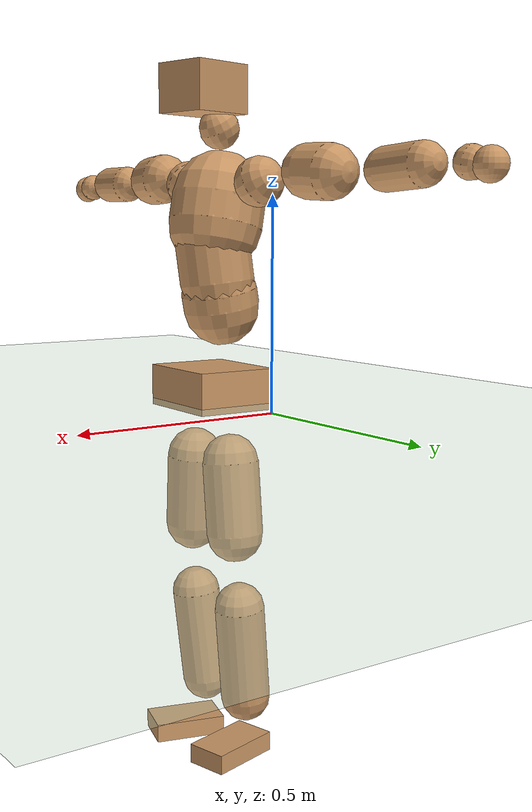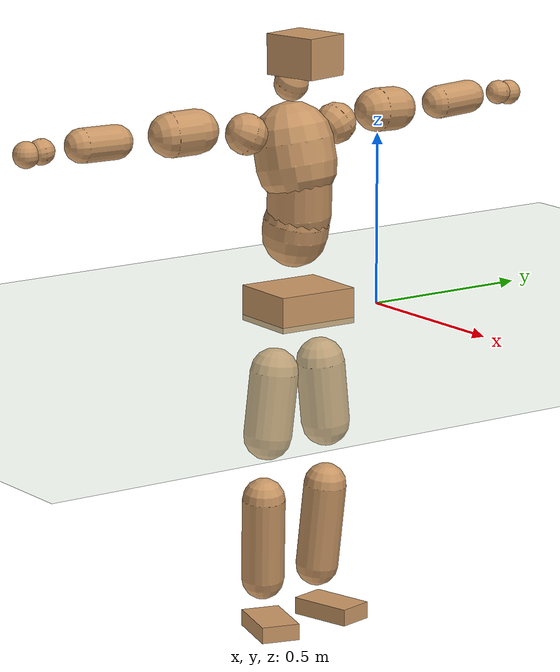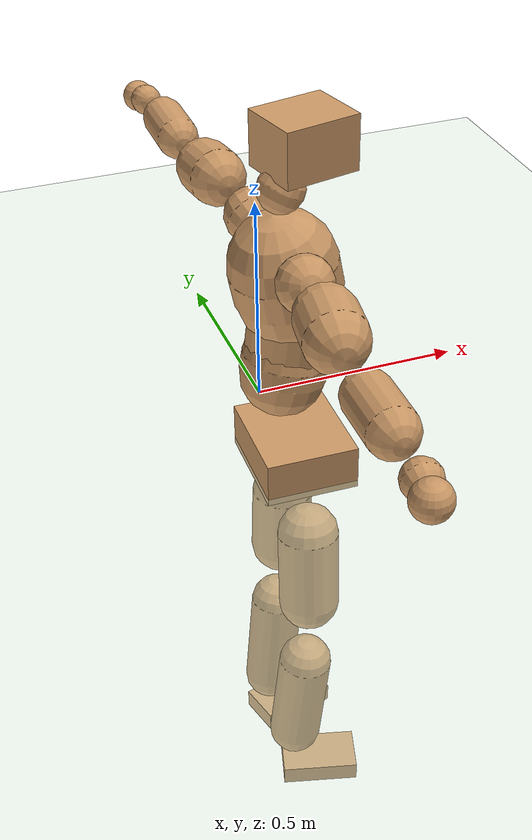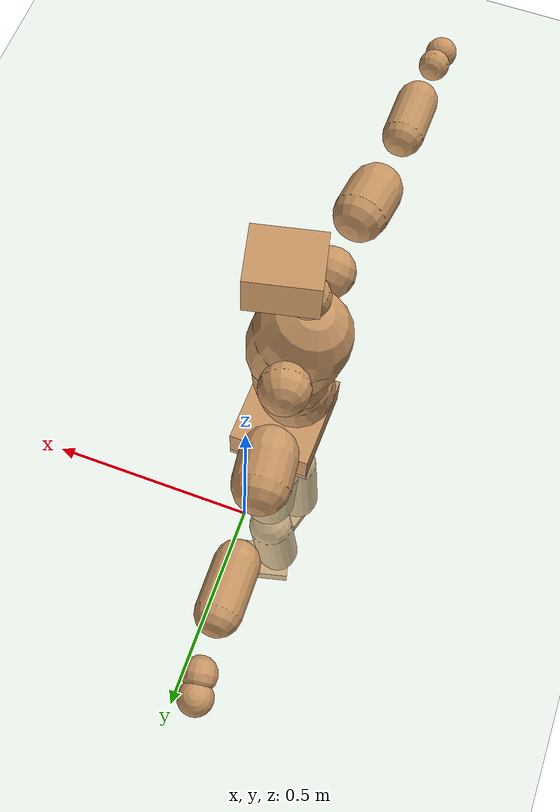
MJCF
<mujoco model="humanoid">
  <compiler coordinate="local" angle="radian"/>
  <default>
    <joint damping="0.0" armature="0.01" stiffness="0.0" limited="true"/>
    <geom conaffinity="1" condim="3" contype="7" margin="0.001" rgba="0.8 0.6 .4 1"/>
  </default>
  <asset>
    <texture type="skybox" builtin="gradient" rgb1=".4 .5 .6" rgb2="0 0 0" width="100" height="100"/>
    <texture builtin="flat" height="1278" mark="cross" markrgb="1 1 1" name="texgeom" random="0.01" rgb1="0.8 0.6 0.4" rgb2="0.8 0.6 0.4" type="cube" width="127"/>
    <texture builtin="checker" height="100" name="texplane" rgb1="0 0 0" rgb2="0.8 0.8 0.8" type="2d" width="100"/>
    <material name="MatPlane" reflectance="0.5" shininess="1" specular="1" texrepeat="60 60" texture="texplane"/>
    <material name="geom" texture="texgeom" texuniform="true"/>
  </asset>
  <worldbody>
    <light cutoff="100" diffuse="1 1 1" dir="-0 0 -1.3" directional="true" exponent="1" pos="0 0 1.3" specular=".1 .1 .1"/>
    <geom conaffinity="1" condim="3" name="floor" pos="0 0 0" rgba="0.8 0.9 0.8 1" size="100 100 .2" type="plane" material="MatPlane"/>
    <body name="Pelvis" pos="0.0013 -0.2705 0.0409">
      <freejoint name="Pelvis"/>
      <geom type="box" contype="1" conaffinity="1" density="5359.374883" pos="-0.0120 0.0003 -0.0082" size="0.1034 0.1216 0.0512" quat="0.9999 0.0000 0.0000 -0.0129" name="Pelvis"/>
      <body name="L_Hip" pos="-0.0141 0.0698 -0.0891">
        <joint name="L_Hip_x" type="hinge" pos="0 0 0" axis="1 0 0" stiffness="1600" damping="160" armature="0.02" range="-180.0000 180.0000"/>
        <joint name="L_Hip_y" type="hinge" pos="0 0 0" axis="0 1 0" stiffness="1600" damping="160" armature="0.02" range="-180.0000 180.0000"/>
        <joint name="L_Hip_z" type="hinge" pos="0 0 0" axis="0 0 1" stiffness="1600" damping="160" armature="0.02" range="-180.0000 180.0000"/>
        <geom type="capsule" contype="1" conaffinity="1" density="2040.816327" size="0.0701" fromto="-0.0001 0.0102 -0.0996 -0.0003 0.0288 -0.2809" name="L_Hip"/>
        <body name="L_Knee" pos="-0.0004 0.039 -0.3805">
          <joint name="L_Knee_x" type="hinge" pos="0 0 0" axis="1 0 0" stiffness="1600" damping="160" armature="0.02" range="-180.0000 180.0000"/>
          <joint name="L_Knee_y" type="hinge" pos="0 0 0" axis="0 1 0" stiffness="1600" damping="160" armature="0.02" range="-180.0000 180.0000"/>
          <joint name="L_Knee_z" type="hinge" pos="0 0 0" axis="0 0 1" stiffness="1600" damping="160" armature="0.02" range="-180.0000 180.0000"/>
          <geom type="capsule" contype="1" conaffinity="1" density="1234.567901" size="0.0626" fromto="-0.0096 -0.0038 -0.0921 -0.0352 -0.0140 -0.3388" name="L_Knee"/>
          <body name="L_Ankle" pos="-0.0448 -0.0178 -0.4309">
            <joint name="L_Ankle_x" type="hinge" pos="0 0 0" axis="1 0 0" stiffness="1600" damping="160" armature="0.02" range="-180.0000 180.0000"/>
            <joint name="L_Ankle_y" type="hinge" pos="0 0 0" axis="0 1 0" stiffness="1600" damping="160" armature="0.02" range="-180.0000 180.0000"/>
            <joint name="L_Ankle_z" type="hinge" pos="0 0 0" axis="0 0 1" stiffness="1600" damping="160" armature="0.02" range="-180.0000 180.0000"/>
            <geom type="box" contype="1" conaffinity="1" density="999.999995" pos="0.0641 0.0161 -0.0302" size="0.0935 0.0526 0.0245" quat="0.9924 0.0000 0.0000 0.1228" name="L_Ankle"/>
            <body name="L_Toe" pos="0.1283 0.0322 -0.0605">
              <joint name="L_Toe_x" type="hinge" pos="0 0 0" axis="1 0 0" stiffness="1000" damping="100" armature="0.02" range="-180.0000 180.0000"/>
              <joint name="L_Toe_y" type="hinge" pos="0 0 0" axis="0 1 0" stiffness="1000" damping="100" armature="0.02" range="-180.0000 180.0000"/>
              <joint name="L_Toe_z" type="hinge" pos="0 0 0" axis="0 0 1" stiffness="1000" damping="100" armature="0.02" range="-180.0000 180.0000"/>
              <geom type="box" contype="1" conaffinity="1" density="8590360.06047" pos="0.0000 0.0000 0.0306" size="0.001 0.0026 0.0012" quat="0.9918 0.0000 0.0000 0.1281" name="L_Toe"/>
            </body>
          </body>
        </body>
      </body>
      <body name="R_Hip" pos="-0.0098 -0.0724 -0.097">
        <joint name="R_Hip_x" type="hinge" pos="0 0 0" axis="1 0 0" stiffness="1600" damping="160" armature="0.02" range="-180.0000 180.0000"/>
        <joint name="R_Hip_y" type="hinge" pos="0 0 0" axis="0 1 0" stiffness="1600" damping="160" armature="0.02" range="-180.0000 180.0000"/>
        <joint name="R_Hip_z" type="hinge" pos="0 0 0" axis="0 0 1" stiffness="1600" damping="160" armature="0.02" range="-180.0000 180.0000"/>
        <geom type="capsule" contype="1" conaffinity="1" density="2040.816327" size="0.07" fromto="-0.0028 -0.0105 -0.0994 -0.0079 -0.0302 -0.2853" name="R_Hip"/>
        <body name="R_Knee" pos="-0.0107 -0.0407 -0.3847">
          <joint name="R_Knee_x" type="hinge" pos="0 0 0" axis="1 0 0" stiffness="1600" damping="160" armature="0.02" range="-180.0000 180.0000"/>
          <joint name="R_Knee_y" type="hinge" pos="0 0 0" axis="0 1 0" stiffness="1600" damping="160" armature="0.02" range="-180.0000 180.0000"/>
          <joint name="R_Knee_z" type="hinge" pos="0 0 0" axis="0 0 1" stiffness="1600" damping="160" armature="0.02" range="-180.0000 180.0000"/>
          <geom type="capsule" contype="1" conaffinity="1" density="1234.567901" size="0.0622" fromto="-0.0086 0.0046 -0.0916 -0.0316 0.0167 -0.3352" name="R_Knee"/>
          <body name="R_Ankle" pos="-0.0403 0.0213 -0.4269">
            <joint name="R_Ankle_x" type="hinge" pos="0 0 0" axis="1 0 0" stiffness="1600" damping="160" armature="0.02" range="-180.0000 180.0000"/>
            <joint name="R_Ankle_y" type="hinge" pos="0 0 0" axis="0 1 0" stiffness="1600" damping="160" armature="0.02" range="-180.0000 180.0000"/>
            <joint name="R_Ankle_z" type="hinge" pos="0 0 0" axis="0 0 1" stiffness="1600" damping="160" armature="0.02" range="-180.0000 180.0000"/>
            <geom type="box" contype="1" conaffinity="1" density="999.999973" pos="0.0672 -0.0192 -0.0321" size="0.0919 0.056 0.0238" quat="0.9903 0.0000 0.0000 -0.1387" name="R_Ankle"/>
            <body name="R_Toe" pos="0.1345 -0.0384 -0.0641">
              <joint name="R_Toe_x" type="hinge" pos="0 0 0" axis="1 0 0" stiffness="1000" damping="100" armature="0.02" range="-180.0000 180.0000"/>
              <joint name="R_Toe_y" type="hinge" pos="0 0 0" axis="0 1 0" stiffness="1000" damping="100" armature="0.02" range="-180.0000 180.0000"/>
              <joint name="R_Toe_z" type="hinge" pos="0 0 0" axis="0 0 1" stiffness="1000" damping="100" armature="0.02" range="-180.0000 180.0000"/>
              <geom type="box" contype="1" conaffinity="1" density="7806100.931723" pos="0.0000 0.0000 0.0328" size="0.0012 0.0027 0.0012" quat="0.9915 0.0000 0.0000 -0.1301" name="R_Toe"/>
            </body>
          </body>
        </body>
      </body>
      <body name="Torso" pos="-0.048 0.0044 0.137">
        <joint name="Torso_x" type="hinge" pos="0 0 0" axis="1 0 0" stiffness="2000" damping="200" armature="0.02" range="-180.0000 180.0000"/>
        <joint name="Torso_y" type="hinge" pos="0 0 0" axis="0 1 0" stiffness="2000" damping="200" armature="0.02" range="-180.0000 180.0000"/>
        <joint name="Torso_z" type="hinge" pos="0 0 0" axis="0 0 1" stiffness="2000" damping="200" armature="0.02" range="-180.0000 180.0000"/>
        <geom type="capsule" contype="1" conaffinity="1" density="2040.816327" size="0.0946" fromto="0.0182 0.0028 0.0928 0.0105 0.0016 0.0536" name="Torso"/>
        <body name="Spine" pos="0.0287 0.0043 0.1465">
          <joint name="Spine_x" type="hinge" pos="0 0 0" axis="1 0 0" stiffness="2000" damping="200" armature="0.02" range="-180.0000 180.0000"/>
          <joint name="Spine_y" type="hinge" pos="0 0 0" axis="0 1 0" stiffness="2000" damping="200" armature="0.02" range="-180.0000 180.0000"/>
          <joint name="Spine_z" type="hinge" pos="0 0 0" axis="0 0 1" stiffness="2000" damping="200" armature="0.02" range="-180.0000 180.0000"/>
          <geom type="capsule" contype="1" conaffinity="1" density="2040.816327" size="0.0928" fromto="0.0098 -0.0058 0.0921 -0.0034 0.0020 -0.0317" name="Spine"/>
          <body name="Chest" pos="0.0064 -0.0038 0.0604">
            <joint name="Chest_x" type="hinge" pos="0 0 0" axis="1 0 0" stiffness="2000" damping="200" armature="0.02" range="-180.0000 180.0000"/>
            <joint name="Chest_y" type="hinge" pos="0 0 0" axis="0 1 0" stiffness="2000" damping="200" armature="0.02" range="-180.0000 180.0000"/>
            <joint name="Chest_z" type="hinge" pos="0 0 0" axis="0 0 1" stiffness="2000" damping="200" armature="0.02" range="-180.0000 180.0000"/>
            <geom type="capsule" contype="1" conaffinity="1" density="2040.816327" size="0.1162" fromto="-0.0235 -0.0063 0.1136 -0.0102 -0.0027 0.0491" name="Chest"/>
            <body name="Neck" pos="-0.0526 -0.0143 0.2369">
              <joint name="Neck_x" type="hinge" pos="0 0 0" axis="1 0 0" stiffness="1000" damping="100" armature="0.02" range="-180.0000 180.0000"/>
              <joint name="Neck_y" type="hinge" pos="0 0 0" axis="0 1 0" stiffness="1000" damping="100" armature="0.02" range="-180.0000 180.0000"/>
              <joint name="Neck_z" type="hinge" pos="0 0 0" axis="0 0 1" stiffness="1000" damping="100" armature="0.02" range="-180.0000 180.0000"/>
              <geom type="capsule" contype="1" conaffinity="1" density="1000" size="0.0497" fromto="0.0250 0.0049 0.0430 0.0260 0.0050 0.0447" name="Neck"/>
              <body name="Head" pos="0.051 0.0099 0.0877">
                <joint name="Head_x" type="hinge" pos="0 0 0" axis="1 0 0" stiffness="1000" damping="100" armature="0.02" range="-180.0000 180.0000"/>
                <joint name="Head_y" type="hinge" pos="0 0 0" axis="0 1 0" stiffness="1000" damping="100" armature="0.02" range="-180.0000 180.0000"/>
                <joint name="Head_z" type="hinge" pos="0 0 0" axis="0 0 1" stiffness="1000" damping="100" armature="0.02" range="-180.0000 180.0000"/>
                <geom type="box" contype="1" conaffinity="1" density="2249.999993" pos="0.0265 0.0059 0.0448" size="0.0826 0.0687 0.0583" quat="0.9939 0.0000 0.0000 0.1102" name="Head"/>
              </body>
            </body>
            <body name="L_Thorax" pos="-0.0214 0.0811 0.1261">
              <joint name="L_Thorax_x" type="hinge" pos="0 0 0" axis="1 0 0" stiffness="1000" damping="100" armature="0.02" range="-180.0000 180.0000"/>
              <joint name="L_Thorax_y" type="hinge" pos="0 0 0" axis="0 1 0" stiffness="1000" damping="100" armature="0.02" range="-180.0000 180.0000"/>
              <joint name="L_Thorax_z" type="hinge" pos="0 0 0" axis="0 0 1" stiffness="1000" damping="100" armature="0.02" range="-180.0000 180.0000"/>
              <geom type="capsule" contype="1" conaffinity="1" density="1000" size="0.0599" fromto="-0.0127 0.0677 0.0226 -0.0131 0.0695 0.0233" name="L_Thorax"/>
              <body name="L_Shoulder" pos="-0.0258 0.1372 0.0459">
                <joint name="L_Shoulder_x" type="hinge" pos="0 0 0" axis="1 0 0" stiffness="1000" damping="100" armature="0.02" range="-720.0000 720.0000"/>
                <joint name="L_Shoulder_y" type="hinge" pos="0 0 0" axis="0 1 0" stiffness="1000" damping="100" armature="0.02" range="-720.0000 720.0000"/>
                <joint name="L_Shoulder_z" type="hinge" pos="0 0 0" axis="0 0 1" stiffness="1000" damping="100" armature="0.02" range="-720.0000 720.0000"/>
                <geom type="capsule" contype="1" conaffinity="1" density="1000" size="0.0634" fromto="-0.0094 0.0928 -0.0050 -0.0163 0.1607 -0.0087" name="L_Shoulder"/>
                <body name="L_Elbow" pos="-0.0258 0.2535 -0.0138">
                  <joint name="L_Elbow_x" type="hinge" pos="0 0 0" axis="1 0 0" stiffness="1000" damping="100" armature="0.02" range="-720.0000 720.0000"/>
                  <joint name="L_Elbow_y" type="hinge" pos="0 0 0" axis="0 1 0" stiffness="1000" damping="100" armature="0.02" range="-720.0000 720.0000"/>
                  <joint name="L_Elbow_z" type="hinge" pos="0 0 0" axis="0 0 1" stiffness="1000" damping="100" armature="0.02" range="-720.0000 720.0000"/>
                  <geom type="capsule" contype="1" conaffinity="1" density="1000" size="0.0482" fromto="-0.0013 0.0781 0.0040 -0.0031 0.1869 0.0096" name="L_Elbow"/>
                  <body name="L_Wrist" pos="-0.0044 0.265 0.0136">
                    <joint name="L_Wrist_x" type="hinge" pos="0 0 0" axis="1 0 0" stiffness="600" damping="60" armature="0.02" range="-180.0000 180.0000"/>
                    <joint name="L_Wrist_y" type="hinge" pos="0 0 0" axis="0 1 0" stiffness="600" damping="60" armature="0.02" range="-180.0000 180.0000"/>
                    <joint name="L_Wrist_z" type="hinge" pos="0 0 0" axis="0 0 1" stiffness="600" damping="60" armature="0.02" range="-180.0000 180.0000"/>
                    <geom type="capsule" contype="1" conaffinity="1" density="1000" size="0.0354" fromto="-0.0075 0.0428 -0.0053 -0.0078 0.0447 -0.0056" name="L_Wrist"/>
                    <body name="L_Hand" pos="-0.0153 0.0875 -0.0109">
                      <joint name="L_Hand_x" type="hinge" pos="0 0 0" axis="1 0 0" stiffness="600" damping="60" armature="0.02" range="-180.0000 180.0000"/>
                      <joint name="L_Hand_y" type="hinge" pos="0 0 0" axis="0 1 0" stiffness="600" damping="60" armature="0.02" range="-180.0000 180.0000"/>
                      <joint name="L_Hand_z" type="hinge" pos="0 0 0" axis="0 0 1" stiffness="600" damping="60" armature="0.02" range="-180.0000 180.0000"/>
                      <geom type="sphere" contype="1" conaffinity="1" density="1000" size="0.0362" pos="0.0000 0.0000 0.0000" name="L_Hand"/>
                    </body>
                  </body>
                </body>
              </body>
            </body>
            <body name="R_Thorax" pos="-0.0272 -0.094 0.1253">
              <joint name="R_Thorax_x" type="hinge" pos="0 0 0" axis="1 0 0" stiffness="1000" damping="100" armature="0.02" range="-180.0000 180.0000"/>
              <joint name="R_Thorax_y" type="hinge" pos="0 0 0" axis="0 1 0" stiffness="1000" damping="100" armature="0.02" range="-180.0000 180.0000"/>
              <joint name="R_Thorax_z" type="hinge" pos="0 0 0" axis="0 0 1" stiffness="1000" damping="100" armature="0.02" range="-180.0000 180.0000"/>
              <geom type="capsule" contype="1" conaffinity="1" density="1000" size="0.0599" fromto="-0.0066 -0.0630 0.0244 -0.0068 -0.0648 0.0252" name="R_Thorax"/>
              <body name="R_Shoulder" pos="-0.0134 -0.1278 0.0496">
                <joint name="R_Shoulder_x" type="hinge" pos="0 0 0" axis="1 0 0" stiffness="1000" damping="100" armature="0.02" range="-720.0000 720.0000"/>
                <joint name="R_Shoulder_y" type="hinge" pos="0 0 0" axis="0 1 0" stiffness="1000" damping="100" armature="0.02" range="-720.0000 720.0000"/>
                <joint name="R_Shoulder_z" type="hinge" pos="0 0 0" axis="0 0 1" stiffness="1000" damping="100" armature="0.02" range="-720.0000 720.0000"/>
                <geom type="capsule" contype="1" conaffinity="1" density="1000" size="0.0644" fromto="-0.0131 -0.0934 -0.0035 -0.0239 -0.1699 -0.0064" name="R_Shoulder"/>
                <body name="R_Elbow" pos="-0.037 -0.2634 -0.0099">
                  <joint name="R_Elbow_x" type="hinge" pos="0 0 0" axis="1 0 0" stiffness="1000" damping="100" armature="0.02" range="-720.0000 720.0000"/>
                  <joint name="R_Elbow_y" type="hinge" pos="0 0 0" axis="0 1 0" stiffness="1000" damping="100" armature="0.02" range="-720.0000 720.0000"/>
                  <joint name="R_Elbow_z" type="hinge" pos="0 0 0" axis="0 0 1" stiffness="1000" damping="100" armature="0.02" range="-720.0000 720.0000"/>
                  <geom type="capsule" contype="1" conaffinity="1" density="1000" size="0.0492" fromto="-0.0017 -0.0792 0.0007 -0.0040 -0.1878 0.0017" name="R_Elbow"/>
                  <body name="R_Wrist" pos="-0.0057 -0.267 0.0024">
                    <joint name="R_Wrist_x" type="hinge" pos="0 0 0" axis="1 0 0" stiffness="600" damping="60" armature="0.02" range="-180.0000 180.0000"/>
                    <joint name="R_Wrist_y" type="hinge" pos="0 0 0" axis="0 1 0" stiffness="600" damping="60" armature="0.02" range="-180.0000 180.0000"/>
                    <joint name="R_Wrist_z" type="hinge" pos="0 0 0" axis="0 0 1" stiffness="600" damping="60" armature="0.02" range="-180.0000 180.0000"/>
                    <geom type="capsule" contype="1" conaffinity="1" density="1000" size="0.0368" fromto="-0.0047 -0.0448 -0.0044 -0.0049 -0.0468 -0.0046" name="R_Wrist"/>
                    <body name="R_Hand" pos="-0.0097 -0.0916 -0.009">
                      <joint name="R_Hand_x" type="hinge" pos="0 0 0" axis="1 0 0" stiffness="600" damping="60" armature="0.02" range="-180.0000 180.0000"/>
                      <joint name="R_Hand_y" type="hinge" pos="0 0 0" axis="0 1 0" stiffness="600" damping="60" armature="0.02" range="-180.0000 180.0000"/>
                      <joint name="R_Hand_z" type="hinge" pos="0 0 0" axis="0 0 1" stiffness="600" damping="60" armature="0.02" range="-180.0000 180.0000"/>
                      <geom type="sphere" contype="1" conaffinity="1" density="1000" size="0.0375" pos="0.0000 0.0000 0.0000" name="R_Hand"/>
                    </body>
                  </body>
                </body>
              </body>
            </body>
          </body>
        </body>
      </body>
    </body>
  </worldbody>
  <actuator>
    <motor name="L_Hip_x" joint="L_Hip_x" gear="500"/>
    <motor name="L_Hip_y" joint="L_Hip_y" gear="500"/>
    <motor name="L_Hip_z" joint="L_Hip_z" gear="500"/>
    <motor name="L_Knee_x" joint="L_Knee_x" gear="500"/>
    <motor name="L_Knee_y" joint="L_Knee_y" gear="500"/>
    <motor name="L_Knee_z" joint="L_Knee_z" gear="500"/>
    <motor name="L_Ankle_x" joint="L_Ankle_x" gear="500"/>
    <motor name="L_Ankle_y" joint="L_Ankle_y" gear="500"/>
    <motor name="L_Ankle_z" joint="L_Ankle_z" gear="500"/>
    <motor name="L_Toe_x" joint="L_Toe_x" gear="500"/>
    <motor name="L_Toe_y" joint="L_Toe_y" gear="500"/>
    <motor name="L_Toe_z" joint="L_Toe_z" gear="500"/>
    <motor name="R_Hip_x" joint="R_Hip_x" gear="500"/>
    <motor name="R_Hip_y" joint="R_Hip_y" gear="500"/>
    <motor name="R_Hip_z" joint="R_Hip_z" gear="500"/>
    <motor name="R_Knee_x" joint="R_Knee_x" gear="500"/>
    <motor name="R_Knee_y" joint="R_Knee_y" gear="500"/>
    <motor name="R_Knee_z" joint="R_Knee_z" gear="500"/>
    <motor name="R_Ankle_x" joint="R_Ankle_x" gear="500"/>
    <motor name="R_Ankle_y" joint="R_Ankle_y" gear="500"/>
    <motor name="R_Ankle_z" joint="R_Ankle_z" gear="500"/>
    <motor name="R_Toe_x" joint="R_Toe_x" gear="500"/>
    <motor name="R_Toe_y" joint="R_Toe_y" gear="500"/>
    <motor name="R_Toe_z" joint="R_Toe_z" gear="500"/>
    <motor name="Torso_x" joint="Torso_x" gear="500"/>
    <motor name="Torso_y" joint="Torso_y" gear="500"/>
    <motor name="Torso_z" joint="Torso_z" gear="500"/>
    <motor name="Spine_x" joint="Spine_x" gear="500"/>
    <motor name="Spine_y" joint="Spine_y" gear="500"/>
    <motor name="Spine_z" joint="Spine_z" gear="500"/>
    <motor name="Chest_x" joint="Chest_x" gear="500"/>
    <motor name="Chest_y" joint="Chest_y" gear="500"/>
    <motor name="Chest_z" joint="Chest_z" gear="500"/>
    <motor name="Neck_x" joint="Neck_x" gear="500"/>
    <motor name="Neck_y" joint="Neck_y" gear="500"/>
    <motor name="Neck_z" joint="Neck_z" gear="500"/>
    <motor name="Head_x" joint="Head_x" gear="500"/>
    <motor name="Head_y" joint="Head_y" gear="500"/>
    <motor name="Head_z" joint="Head_z" gear="500"/>
    <motor name="L_Thorax_x" joint="L_Thorax_x" gear="500"/>
    <motor name="L_Thorax_y" joint="L_Thorax_y" gear="500"/>
    <motor name="L_Thorax_z" joint="L_Thorax_z" gear="500"/>
    <motor name="L_Shoulder_x" joint="L_Shoulder_x" gear="500"/>
    <motor name="L_Shoulder_y" joint="L_Shoulder_y" gear="500"/>
    <motor name="L_Shoulder_z" joint="L_Shoulder_z" gear="500"/>
    <motor name="L_Elbow_x" joint="L_Elbow_x" gear="500"/>
    <motor name="L_Elbow_y" joint="L_Elbow_y" gear="500"/>
    <motor name="L_Elbow_z" joint="L_Elbow_z" gear="500"/>
    <motor name="L_Wrist_x" joint="L_Wrist_x" gear="500"/>
    <motor name="L_Wrist_y" joint="L_Wrist_y" gear="500"/>
    <motor name="L_Wrist_z" joint="L_Wrist_z" gear="500"/>
    <motor name="L_Hand_x" joint="L_Hand_x" gear="500"/>
    <motor name="L_Hand_y" joint="L_Hand_y" gear="500"/>
    <motor name="L_Hand_z" joint="L_Hand_z" gear="500"/>
    <motor name="R_Thorax_x" joint="R_Thorax_x" gear="500"/>
    <motor name="R_Thorax_y" joint="R_Thorax_y" gear="500"/>
    <motor name="R_Thorax_z" joint="R_Thorax_z" gear="500"/>
    <motor name="R_Shoulder_x" joint="R_Shoulder_x" gear="500"/>
    <motor name="R_Shoulder_y" joint="R_Shoulder_y" gear="500"/>
    <motor name="R_Shoulder_z" joint="R_Shoulder_z" gear="500"/>
    <motor name="R_Elbow_x" joint="R_Elbow_x" gear="500"/>
    <motor name="R_Elbow_y" joint="R_Elbow_y" gear="500"/>
    <motor name="R_Elbow_z" joint="R_Elbow_z" gear="500"/>
    <motor name="R_Wrist_x" joint="R_Wrist_x" gear="500"/>
    <motor name="R_Wrist_y" joint="R_Wrist_y" gear="500"/>
    <motor name="R_Wrist_z" joint="R_Wrist_z" gear="500"/>
    <motor name="R_Hand_x" joint="R_Hand_x" gear="500"/>
    <motor name="R_Hand_y" joint="R_Hand_y" gear="500"/>
    <motor name="R_Hand_z" joint="R_Hand_z" gear="500"/>
  </actuator>
  <contact>
    <exclude body1="Torso" body2="Chest"/>
    <exclude body1="Head" body2="Chest"/>
    <exclude body1="R_Knee" body2="R_Toe"/>
    <exclude body1="R_Knee" body2="L_Ankle"/>
    <exclude body1="R_Knee" body2="L_Toe"/>
    <exclude body1="L_Knee" body2="L_Toe"/>
    <exclude body1="L_Knee" body2="R_Ankle"/>
    <exclude body1="L_Knee" body2="R_Toe"/>
    <exclude body1="L_Shoulder" body2="Chest"/>
    <exclude body1="R_Shoulder" body2="Chest"/>
  </contact>
  <sensor/>
  <size njmax="700" nconmax="700"/>
</mujoco>
